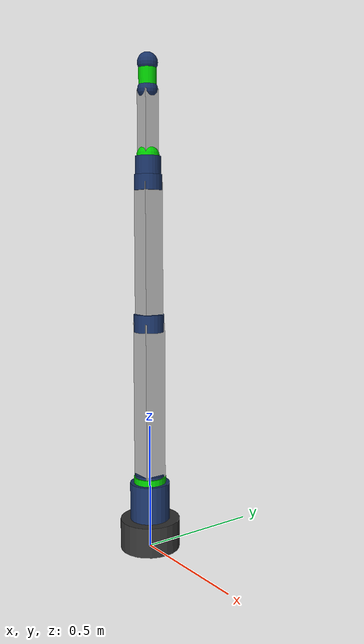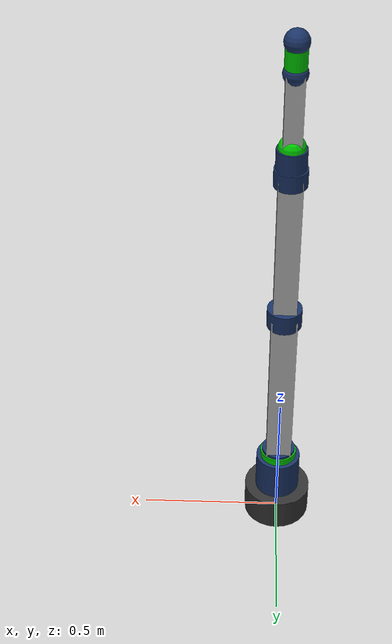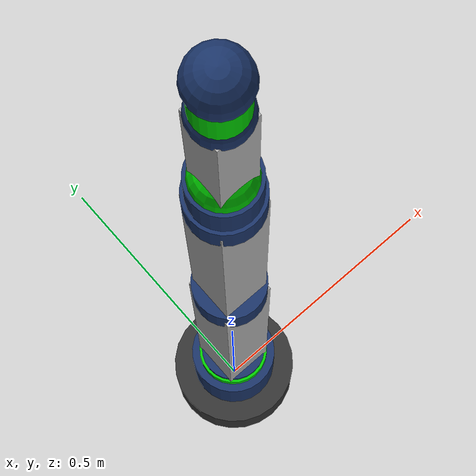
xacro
<?xml version="1.0"?>
<robot xmlns:xacro="http://www.ros.org/wiki/xacro" name="realistic_arm">

  <xacro:arg name="ros2_control_config" default="$(find arm_description)/config/ros2_controllers.yaml"/>

  <!-- COLORS -->
  <material name="dark_grey"><color rgba="0.2 0.2 0.2 1"/></material>
  <material name="dark_blue"><color rgba="0.1 0.2 0.4 1"/></material>
  <material name="light_grey"><color rgba="0.7 0.7 0.7 1"/></material>
  <material name="bright_green"><color rgba="0.0 0.8 0.0 1"/></material>

  <!-- INERTIA MACROS -->
  <xacro:macro name="box_inertia" params="mass x y z">
    <inertia ixx="${mass*(y*y+z*z)/12}" iyy="${mass*(x*x+z*z)/12}" izz="${mass*(x*x+y*y)/12}" ixy="0" ixz="0" iyz="0"/>
  </xacro:macro>

  <xacro:macro name="cylinder_inertia" params="mass radius length">
    <inertia ixx="${mass*(3*radius*radius+length*length)/12}" iyy="${mass*(3*radius*radius+length*length)/12}" izz="${mass*radius*radius/2}" ixy="0" ixz="0" iyz="0"/>
  </xacro:macro>

  <xacro:macro name="gazebo_no_gravity" params="link">
    <gazebo reference="${link}">
      <gravity>false</gravity>
      <self_collide>false</self_collide>
    </gazebo>
  </xacro:macro>

  <!-- WORLD & BASE -->
  <link name="world"/>
  <joint name="world_joint" type="fixed"><parent link="world"/><child link="base_link"/></joint>

  <link name="base_link">
    <visual>
      <geometry><cylinder radius="0.12" length="0.12"/></geometry>
      <origin xyz="0 0 0.06" rpy="0 0 0"/>
      <material name="dark_grey"/>
    </visual>
    <collision><geometry><cylinder radius="0.12" length="0.12"/></geometry><origin xyz="0 0 0.06" rpy="0 0 0"/></collision>
    <inertial><mass value="10.0"/><origin xyz="0 0 0.06" rpy="0 0 0"/><xacro:cylinder_inertia mass="10.0" radius="0.12" length="0.12"/></inertial>
  </link>

  <!-- ============ JOINT 1: WAIST ROTATION (Z-AXIS) ============ -->
  <!-- SAFE LIMITS: -180° to +180° (full rotation, but controlled) -->
  <joint name="shoulder_pan_joint" type="revolute">
    <parent link="base_link"/>
    <child link="shoulder_link"/>
    <origin xyz="0 0 0.12" rpy="0 0 0"/>
    <axis xyz="0 0 1"/>
    <limit lower="${-3.14159}" upper="${3.14159}" effort="150" velocity="1.0"/>
    <dynamics damping="5.0" friction="1.0"/>
  </joint>

  <link name="shoulder_link">
    <visual>
      <geometry><cylinder radius="0.08" length="0.15"/></geometry>
      <origin xyz="0 0 0.075" rpy="0 0 0"/>
      <material name="dark_blue"/>
    </visual>
    <visual>
      <geometry><cylinder radius="0.065" length="0.05"/></geometry>
      <origin xyz="0 0 0.15" rpy="0 0 0"/>
      <material name="bright_green"/>
    </visual>
    <collision><geometry><cylinder radius="0.08" length="0.15"/></geometry><origin xyz="0 0 0.075" rpy="0 0 0"/></collision>
    <inertial><mass value="4.0"/><origin xyz="0 0 0.075" rpy="0 0 0"/><xacro:cylinder_inertia mass="4.0" radius="0.08" length="0.15"/></inertial>
  </link>

  <!-- ============ JOINT 2: SHOULDER LIFT (Y-AXIS) ============ -->
  <!-- SAFE LIMITS: -90° to +90° (up and down, but not backwards) -->
  <joint name="shoulder_lift_joint" type="revolute">
    <parent link="shoulder_link"/>
    <child link="upper_arm_link"/>
    <origin xyz="0 0 0.15" rpy="0 0 0"/>
    <axis xyz="0 1 0"/>
    <limit lower="${-3.14159}" upper="${3.14159}" effort="150" velocity="0.8"/>
    <dynamics damping="8.0" friction="1.5"/>
  </joint>

  <link name="upper_arm_link">
    <visual>
      <geometry><box size="0.09 0.09 0.65"/></geometry>
      <origin xyz="0 0 0.325" rpy="0 0 0"/>
      <material name="light_grey"/>
    </visual>
    <visual>
      <geometry><cylinder radius="0.06" length="0.07"/></geometry>
      <origin xyz="0 0 0" rpy="0 0 0"/>
      <material name="dark_blue"/>
    </visual>
    <visual>
      <geometry><cylinder radius="0.06" length="0.07"/></geometry>
      <origin xyz="0 0 0.65" rpy="0 0 0"/>
      <material name="dark_blue"/>
    </visual>
    <collision><geometry><box size="0.09 0.09 0.65"/></geometry><origin xyz="0 0 0.325" rpy="0 0 0"/></collision>
    <inertial><mass value="3.5"/><origin xyz="0 0 0.325" rpy="0 0 0"/><xacro:box_inertia mass="3.5" x="0.09" y="0.09" z="0.65"/></inertial>
  </link>

  <!-- ============ JOINT 3: ELBOW (Y-AXIS) ============ -->
  <!-- SAFE LIMITS: -90° to +90° (flexion/extension only) -->
  <joint name="elbow_joint" type="revolute">
    <parent link="upper_arm_link"/>
    <child link="forearm_link"/>
    <origin xyz="0 0 0.65" rpy="0 0 0"/>
    <axis xyz="0 1 0"/>
    <limit lower="${-3.14159}" upper="${3.14159}" effort="100" velocity="0.8"/>
    <dynamics damping="8.0" friction="1.5"/>
  </joint>

  <link name="forearm_link">
    <visual>
      <geometry><box size="0.08 0.08 0.55"/></geometry>
      <origin xyz="0 0 0.275" rpy="0 0 0"/>
      <material name="light_grey"/>
    </visual>
    <visual>
      <geometry><cylinder radius="0.055" length="0.06"/></geometry>
      <origin xyz="0 0 0" rpy="0 0 0"/>
      <material name="dark_blue"/>
    </visual>
    <visual>
      <geometry><cylinder radius="0.055" length="0.06"/></geometry>
      <origin xyz="0 0 0.55" rpy="0 0 0"/>
      <material name="dark_blue"/>
    </visual>
    <collision><geometry><box size="0.08 0.08 0.55"/></geometry><origin xyz="0 0 0.275" rpy="0 0 0"/></collision>
    <inertial><mass value="2.5"/><origin xyz="0 0 0.275" rpy="0 0 0"/><xacro:box_inertia mass="2.5" x="0.08" y="0.08" z="0.55"/></inertial>
  </link>

  <!-- ============ JOINT 4: WRIST 1 ROTATION (Z-AXIS) ============ -->
  <!-- SAFE LIMITS: -180° to +180° (full twist) -->
  <joint name="wrist_1_joint" type="revolute">
    <parent link="forearm_link"/>
    <child link="wrist_1_link"/>
    <origin xyz="0 0 0.55" rpy="0 0 0"/>
    <axis xyz="0 0 1"/>
    <limit lower="${-3.14159}" upper="${3.14159}" effort="75" velocity="1.5"/>
    <dynamics damping="4.0" friction="0.8"/>
  </joint>

  <link name="wrist_1_link">
    <visual>
      <geometry><cylinder radius="0.05" length="0.1"/></geometry>
      <origin xyz="0 0 0.05" rpy="0 0 0"/>
      <material name="dark_blue"/>
    </visual>
    <visual>
      <geometry><sphere radius="0.045"/></geometry>
      <origin xyz="0 0 0.1" rpy="0 0 0"/>
      <material name="bright_green"/>
    </visual>
    <collision><geometry><cylinder radius="0.05" length="0.1"/></geometry><origin xyz="0 0 0.05" rpy="0 0 0"/></collision>
    <inertial><mass value="1.5"/><origin xyz="0 0 0.05" rpy="0 0 0"/><xacro:cylinder_inertia mass="1.5" radius="0.05" length="0.1"/></inertial>
  </link>

  <!-- ============ JOINT 5: WRIST 2 TILT (Y-AXIS) ============ -->
  <!-- SAFE LIMITS: -90° to +90° (tool tilt) -->
  <joint name="wrist_2_joint" type="revolute">
    <parent link="wrist_1_link"/>
    <child link="wrist_2_link"/>
    <origin xyz="0 0 0.1" rpy="0 0 0"/>
    <axis xyz="0 1 0"/>
    <limit lower="${-3.14159}" upper="${3.14159}" effort="50" velocity="1.5"/>
    <dynamics damping="4.0" friction="0.8"/>
  </joint>

  <link name="wrist_2_link">
    <visual>
      <geometry><box size="0.06 0.06 0.25"/></geometry>
      <origin xyz="0 0 0.125" rpy="0 0 0"/>
      <material name="light_grey"/>
    </visual>
    <visual>
      <geometry><sphere radius="0.04"/></geometry>
      <origin xyz="0 0 0" rpy="0 0 0"/>
      <material name="dark_blue"/>
    </visual>
    <visual>
      <geometry><sphere radius="0.04"/></geometry>
      <origin xyz="0 0 0.25" rpy="0 0 0"/>
      <material name="dark_blue"/>
    </visual>
    <collision><geometry><box size="0.06 0.06 0.25"/></geometry><origin xyz="0 0 0.125" rpy="0 0 0"/></collision>
    <inertial><mass value="1.0"/><origin xyz="0 0 0.125" rpy="0 0 0"/><xacro:box_inertia mass="1.0" x="0.06" y="0.06" z="0.25"/></inertial>
  </link>

  <!-- ============ JOINT 6: WRIST 3 ROTATION (Z-AXIS) ============ -->
  <!-- SAFE LIMITS: -180° to +180° (end-effector twist) -->
  <joint name="wrist_3_joint" type="revolute">
    <parent link="wrist_2_link"/>
    <child link="tool_link"/>
    <origin xyz="0 0 0.25" rpy="0 0 0"/>
    <axis xyz="0 0 1"/>
    <limit lower="${-3.14159}" upper="${3.14159}" effort="40" velocity="2.0"/>
    <dynamics damping="3.0" friction="0.6"/>
  </joint>

  <link name="tool_link">
    <visual>
      <geometry><cylinder radius="0.035" length="0.08"/></geometry>
      <origin xyz="0 0 0.04" rpy="0 0 0"/>
      <material name="bright_green"/>
    </visual>
    <visual>
      <geometry><sphere radius="0.04"/></geometry>
      <origin xyz="0 0 0.1" rpy="0 0 0"/>
      <material name="dark_blue"/>
    </visual>
    <collision><geometry><cylinder radius="0.035" length="0.08"/></geometry><origin xyz="0 0 0.04" rpy="0 0 0"/></collision>
    <inertial><mass value="0.5"/><origin xyz="0 0 0.04" rpy="0 0 0"/><xacro:cylinder_inertia mass="0.5" radius="0.035" length="0.08"/></inertial>
  </link>

  <xacro:gazebo_no_gravity link="base_link"/>
  <xacro:gazebo_no_gravity link="shoulder_link"/>
  <xacro:gazebo_no_gravity link="upper_arm_link"/>
  <xacro:gazebo_no_gravity link="forearm_link"/>
  <xacro:gazebo_no_gravity link="wrist_1_link"/>
  <xacro:gazebo_no_gravity link="wrist_2_link"/>
  <xacro:gazebo_no_gravity link="tool_link"/>

  <ros2_control name="GazeboSystem" type="system">
    <hardware>
      <plugin>gz_ros2_control/GazeboSimSystem</plugin>
    </hardware>
    <joint name="shoulder_pan_joint">
      <command_interface name="position">
        <param name="min">-3.14159</param>
        <param name="max">3.14159</param>
      </command_interface>
      <command_interface name="effort">
        <param name="min">-250</param>
        <param name="max">250</param>
      </command_interface>
      <state_interface name="position"/>
      <state_interface name="velocity"/>
    </joint>
    <joint name="shoulder_lift_joint">
      <command_interface name="position">
        <param name="min">-3.14159</param>
        <param name="max">3.14159</param>
      </command_interface>
      <command_interface name="effort">
        <param name="min">-300</param>
        <param name="max">300</param>
      </command_interface>
      <state_interface name="position"/>
      <state_interface name="velocity"/>
    </joint>
    <joint name="elbow_joint">
      <command_interface name="position">
        <param name="min">-3.14159</param>
        <param name="max">3.14159</param>
      </command_interface>
      <command_interface name="effort">
        <param name="min">-250</param>
        <param name="max">250</param>
      </command_interface>
      <state_interface name="position"/>
      <state_interface name="velocity"/>
    </joint>
    <joint name="wrist_1_joint">
      <command_interface name="position">
        <param name="min">-3.14159</param>
        <param name="max">3.14159</param>
      </command_interface>
      <command_interface name="effort">
        <param name="min">-120</param>
        <param name="max">120</param>
      </command_interface>
      <state_interface name="position"/>
      <state_interface name="velocity"/>
    </joint>
    <joint name="wrist_2_joint">
      <command_interface name="position">
        <param name="min">-3.14159</param>
        <param name="max">3.14159</param>
      </command_interface>
      <command_interface name="effort">
        <param name="min">-120</param>
        <param name="max">120</param>
      </command_interface>
      <state_interface name="position"/>
      <state_interface name="velocity"/>
    </joint>
    <joint name="wrist_3_joint">
      <command_interface name="position">
        <param name="min">-3.14159</param>
        <param name="max">3.14159</param>
      </command_interface>
      <command_interface name="effort">
        <param name="min">-80</param>
        <param name="max">80</param>
      </command_interface>
      <state_interface name="position"/>
      <state_interface name="velocity"/>
    </joint>
  </ros2_control>

  <gazebo>
    <plugin filename="gz_ros2_control-system" name="gz_ros2_control::GazeboSimROS2ControlPlugin">
      <parameters>$(arg ros2_control_config)</parameters>
      <position_proportional_gain>3.0</position_proportional_gain>
    </plugin>
  </gazebo>

</robot>
